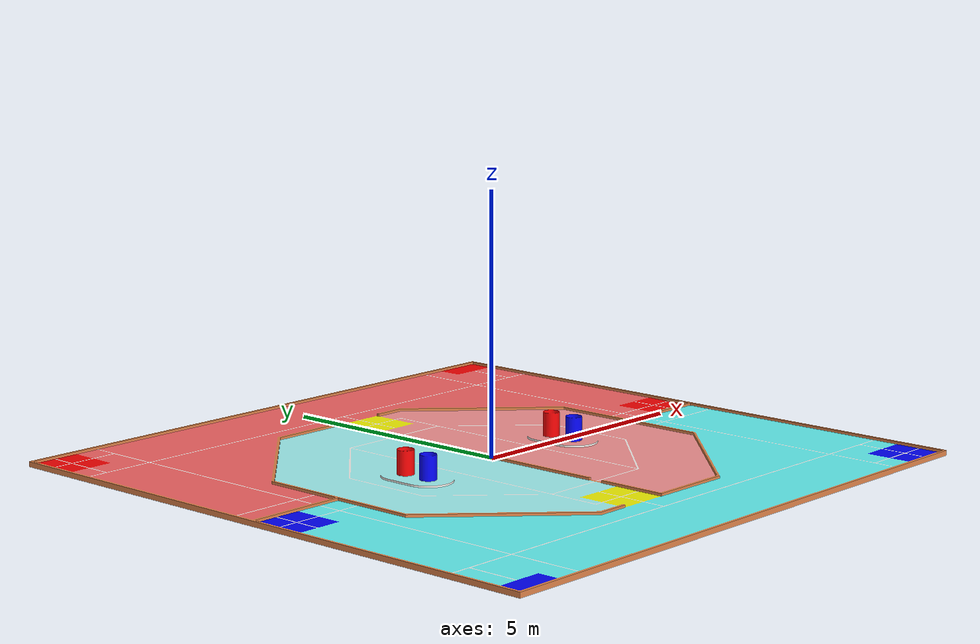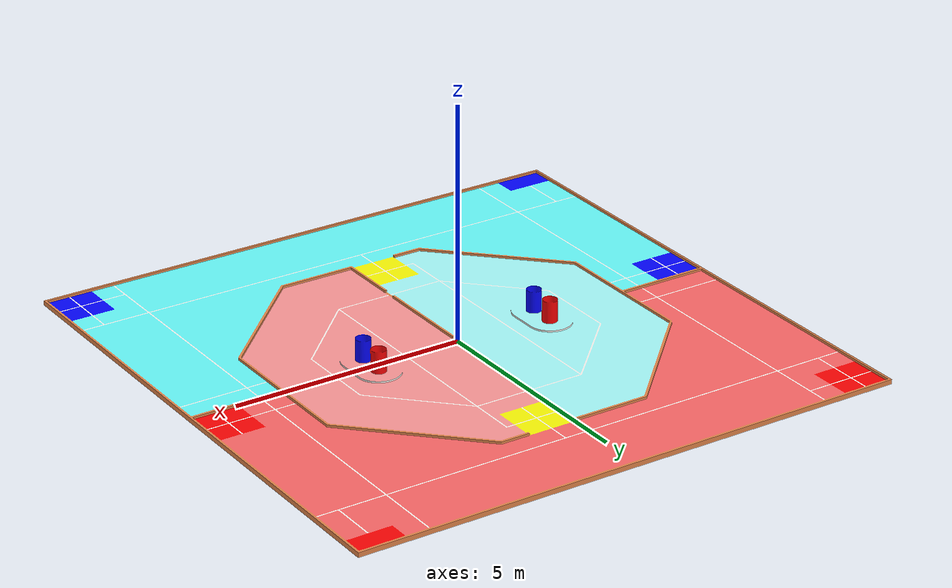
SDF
<?xml version='1.0'?>
<sdf version="1.4">
  <model name="ground">
    <link name="link">
      <collision name="collision">
        <geometry>
          <mesh>
            <uri>model://ground/ground.dae</uri>
          </mesh>
        </geometry>
      </collision>
      <visual name="visual">
        <geometry>
          <mesh>
            <uri>model://ground/ground.dae</uri>
          </mesh>
        </geometry>
      </visual>
    </link>
  </model>
</sdf>
